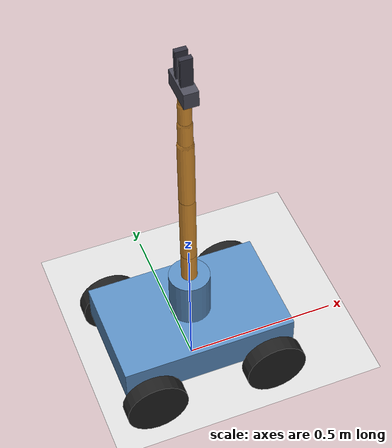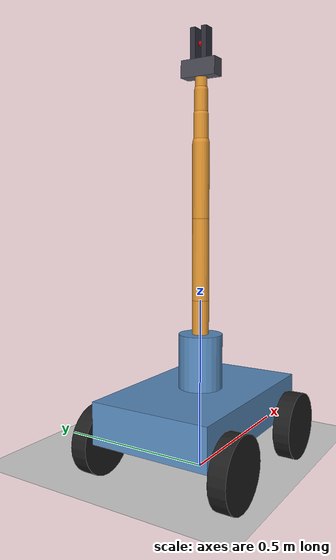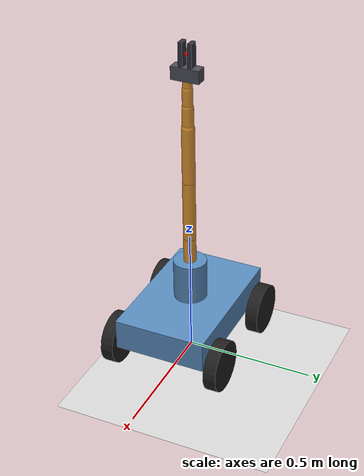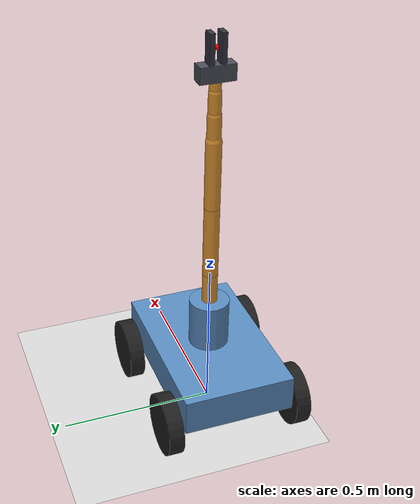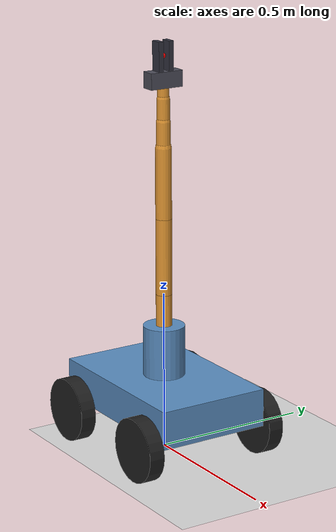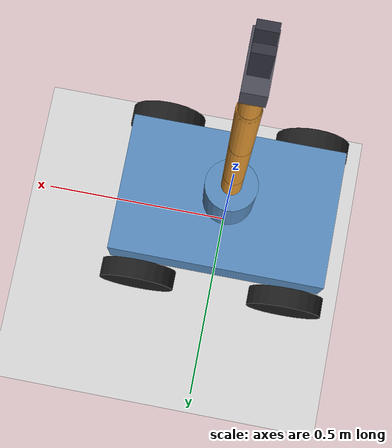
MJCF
<mujoco model="teaching_mobile_manipulator">
  <!-- SI units; x forward, y left, z up. All joint angles use radians. -->
  <compiler angle="radian"/>

  <option integrator="implicitfast"/>

  <default>
    <joint armature="0.01" damping="1"/>
    <geom condim="4" friction="0.8 0.01 0.001" rgba="0.35 0.55 0.75 1"/>
    <default class="wheel">
      <joint damping="0.05" axis="0 1 0" limited="false"/>
      <geom size="0.1 0.025 0" type="cylinder" rgba="0.12 0.12 0.12 1"/>
    </default>
    <default class="arm">
      <joint damping="2" limited="true"/>
      <geom size="0.025 0 0" type="capsule" rgba="0.9 0.6 0.2 1"/>
    </default>
    <default class="finger">
      <joint type="slide" range="0 0.035" armature="0.001" damping="5"/>
      <geom size="0.045 0.008 0.018" type="box" friction="1.2" rgba="0.2 0.2 0.25 1"/>
    </default>
  </default>

  <worldbody>
    <geom name="floor" size="4 4 0.1" type="plane" rgba="0.85 0.85 0.85 1"/>
    <light pos="0 -2 4"/>
    <body name="base" pos="0 0 0.18">
      <joint name="base_free" type="free" armature="0" damping="0"/>
      <geom name="chassis" size="0.28 0.18 0.06" type="box" mass="15"/>
      <body name="wheel_fl" childclass="wheel" pos="0.2 0.215 -0.075">
        <joint name="wheel_fl_joint"/>
        <geom name="wheel_fl_geom" quat="0.707107 -0.707107 0 0" mass="0.5"/>
      </body>
      <body name="wheel_fr" childclass="wheel" pos="0.2 -0.215 -0.075">
        <joint name="wheel_fr_joint"/>
        <geom name="wheel_fr_geom" quat="0.707107 -0.707107 0 0" mass="0.5"/>
      </body>
      <body name="wheel_rl" childclass="wheel" pos="-0.2 0.215 -0.075">
        <joint name="wheel_rl_joint"/>
        <geom name="wheel_rl_geom" quat="0.707107 -0.707107 0 0" mass="0.5"/>
      </body>
      <body name="wheel_rr" childclass="wheel" pos="-0.2 -0.215 -0.075">
        <joint name="wheel_rr_joint"/>
        <geom name="wheel_rr_geom" quat="0.707107 -0.707107 0 0" mass="0.5"/>
      </body>
      <body name="pedestal" pos="0 0 0.06">
        <geom size="0.065 0.08" pos="0 0 0.08" type="cylinder" mass="1"/>
        <body name="link1" childclass="arm" pos="0 0 0.16">
          <joint name="arm_j1" range="-3.14 3.14"/>
          <geom size="0.025 0.05" pos="0 0 0.05" quat="0 1 0 0" mass="0.6"/>
          <body name="link2" pos="0 0 0.1">
            <joint name="arm_j2" range="-1.5 1.5" axis="0 1 0"/>
            <geom size="0.025 0.12" pos="0 0 0.12" quat="0 1 0 0" mass="0.8"/>
            <body name="link3" pos="0 0 0.24">
              <joint name="arm_j3" range="-2 2" axis="0 1 0"/>
              <geom size="0.025 0.11" pos="0 0 0.11" quat="0 1 0 0" mass="0.6"/>
              <body name="link4" pos="0 0 0.22">
                <joint name="arm_j4" range="-3.14 3.14"/>
                <geom size="0.022 0.04" pos="0 0 0.04" quat="0 1 0 0" mass="0.25"/>
                <body name="link5" pos="0 0 0.08">
                  <joint name="arm_j5" range="-1.8 1.8" axis="0 1 0"/>
                  <geom size="0.02 0.035" pos="0 0 0.035" quat="0 1 0 0" mass="0.2"/>
                  <body name="link6" pos="0 0 0.07">
                    <joint name="arm_j6" range="-3.14 3.14"/>
                    <geom size="0.018 0.03" pos="0 0 0.03" quat="0 1 0 0" mass="0.15"/>
                    <body name="palm" pos="0 0 0.06" quat="0.707107 0 -0.707107 0">
                      <geom size="0.025 0.055 0.022" type="box" rgba="0.3 0.3 0.35 1" mass="0.25"/>
                      <site name="grasp_site" size="0.008" pos="0.07 0 0" rgba="1 0 0 1"/>
                      <body name="finger_left" childclass="finger" pos="0.025 0.018 0">
                        <joint name="finger_left_joint" axis="0 1 0"/>
                        <geom pos="0.045 0 0" mass="0.08"/>
                      </body>
                      <body name="finger_right" childclass="finger" pos="0.025 -0.018 0">
                        <joint name="finger_right_joint" axis="0 -1 0"/>
                        <geom pos="0.045 0 0" mass="0.08"/>
                      </body>
                    </body>
                  </body>
                </body>
              </body>
            </body>
          </body>
        </body>
      </body>
    </body>
  </worldbody>

  <equality>
    <joint name="finger_sync" joint1="finger_right_joint" joint2="finger_left_joint"/>
  </equality>

  <actuator>
    <general name="drive_fl" joint="wheel_fl_joint" ctrlrange="-10 10" forcerange="-8 8" biastype="affine" gainprm="3" biasprm="0 0 -3"/>
    <general name="drive_fr" joint="wheel_fr_joint" ctrlrange="-10 10" forcerange="-8 8" biastype="affine" gainprm="3" biasprm="0 0 -3"/>
    <general name="drive_rl" joint="wheel_rl_joint" ctrlrange="-10 10" forcerange="-8 8" biastype="affine" gainprm="3" biasprm="0 0 -3"/>
    <general name="drive_rr" joint="wheel_rr_joint" ctrlrange="-10 10" forcerange="-8 8" biastype="affine" gainprm="3" biasprm="0 0 -3"/>
    <general name="arm_a1" joint="arm_j1" ctrlrange="-3.14 3.14" forcerange="-40 40" biastype="affine" gainprm="150" biasprm="0 -150 -15"/>
    <general name="arm_a2" joint="arm_j2" ctrlrange="-1.5 1.5" forcerange="-40 40" biastype="affine" gainprm="150" biasprm="0 -150 -15"/>
    <general name="arm_a3" joint="arm_j3" ctrlrange="-2 2" forcerange="-30 30" biastype="affine" gainprm="120" biasprm="0 -120 -12"/>
    <general name="arm_a4" joint="arm_j4" ctrlrange="-3.14 3.14" forcerange="-15 15" biastype="affine" gainprm="60" biasprm="0 -60 -6"/>
    <general name="arm_a5" joint="arm_j5" ctrlrange="-1.8 1.8" forcerange="-15 15" biastype="affine" gainprm="60" biasprm="0 -60 -6"/>
    <general name="arm_a6" joint="arm_j6" ctrlrange="-3.14 3.14" forcerange="-10 10" biastype="affine" gainprm="40" biasprm="0 -40 -4"/>
    <general name="gripper" joint="finger_left_joint" ctrlrange="0 0.035" forcerange="-20 20" biastype="affine" gainprm="400" biasprm="0 -400 -10"/>
  </actuator>
</mujoco>
